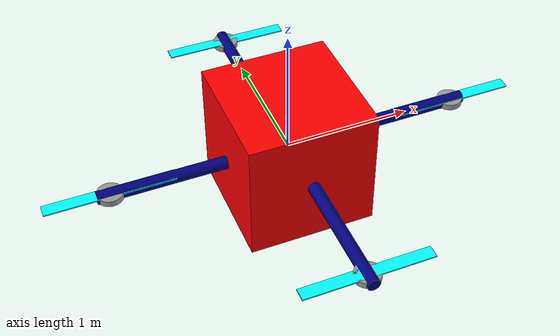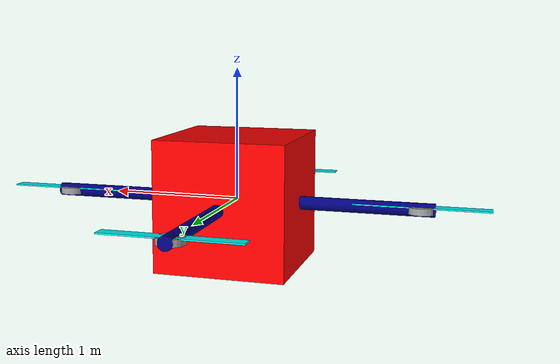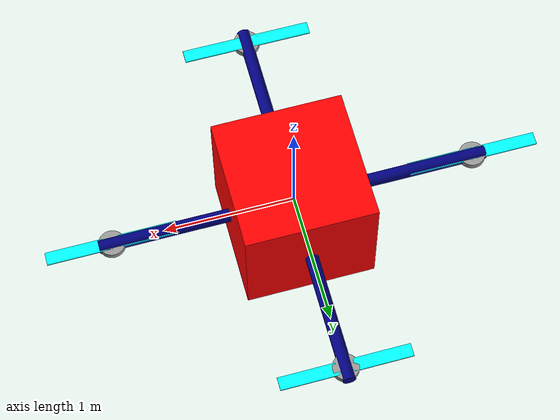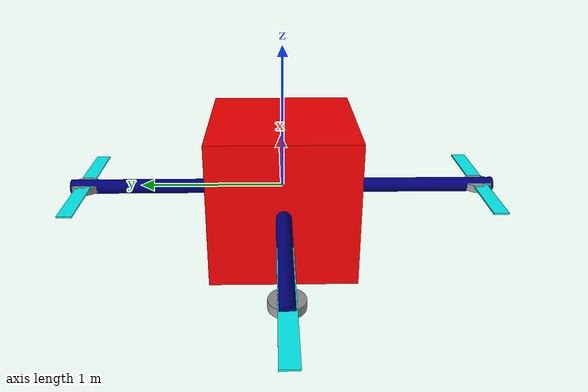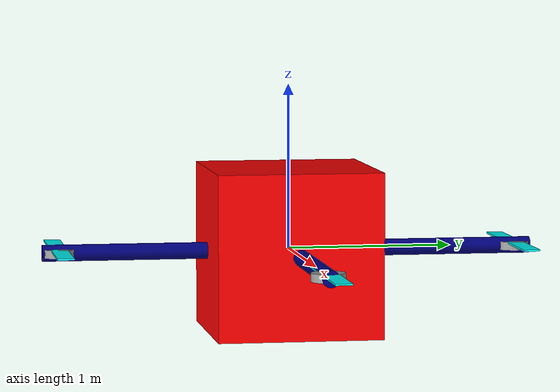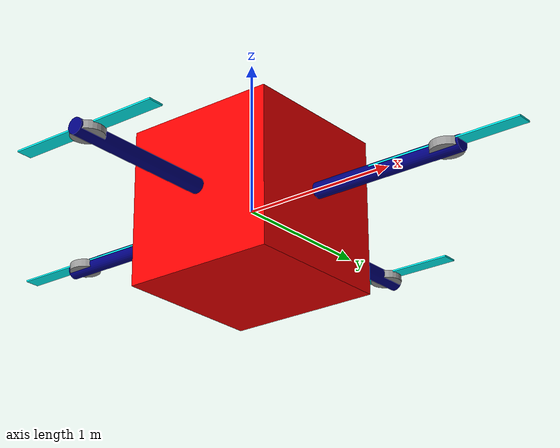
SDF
<?xml version='1.0'?>
<sdf version='1.6'>
  <model name='Quadrotor'>
    <link name='link_0'>
      <pose frame=''>0 0 -0.006154 0 -0 0</pose>
      <inertial>
        <mass>1</mass>
        <inertia>
          <ixx>0.166667</ixx>
          <ixy>0</ixy>
          <ixz>0</ixz>
          <iyy>0.166667</iyy>
          <iyz>0</iyz>
          <izz>0.166667</izz>
        </inertia>
        <pose frame=''>0 0 0 0 -0 0</pose>
      </inertial>
      <gravity>1</gravity>
      <self_collide>0</self_collide>
      <kinematic>0</kinematic>
      <visual name='visual'>
        <pose frame=''>0 0 0 0 -0 0</pose>
        <geometry>
          <box>
            <size>1 1 1</size>
          </box>
        </geometry>
        <material>
          <lighting>1</lighting>
          <script>
            <uri>file://media/materials/scripts/gazebo.material</uri>
            <name>Gazebo/Grey</name>
          </script>
          <ambient>0.3 0.3 0.3 1</ambient>
          <diffuse>1 0 0 1</diffuse>
          <specular>0.01 0.01 0.01 1</specular>
          <emissive>0 0 0 1</emissive>
          <shader type='vertex'>
            <normal_map>__default__</normal_map>
          </shader>
        </material>
        <cast_shadows>1</cast_shadows>
        <transparency>0</transparency>
      </visual>
      <collision name='collision'>
        <laser_retro>0</laser_retro>
        <max_contacts>10</max_contacts>
        <pose frame=''>0 0 0 0 -0 0</pose>
        <geometry>
          <box>
            <size>1 1 1</size>
          </box>
        </geometry>
        <surface>
          <friction>
            <ode>
              <mu>1</mu>
              <mu2>1</mu2>
              <fdir1>0 0 0</fdir1>
              <slip1>0</slip1>
              <slip2>0</slip2>
            </ode>
            <torsional>
              <coefficient>1</coefficient>
              <patch_radius>0</patch_radius>
              <surface_radius>0</surface_radius>
              <use_patch_radius>1</use_patch_radius>
              <ode>
                <slip>0</slip>
              </ode>
            </torsional>
          </friction>
          <bounce>
            <restitution_coefficient>0</restitution_coefficient>
            <threshold>1e+06</threshold>
          </bounce>
          <contact>
            <collide_without_contact>0</collide_without_contact>
            <collide_without_contact_bitmask>1</collide_without_contact_bitmask>
            <collide_bitmask>1</collide_bitmask>
            <ode>
              <soft_cfm>0</soft_cfm>
              <soft_erp>0.2</soft_erp>
              <kp>1e+13</kp>
              <kd>1</kd>
              <max_vel>0.01</max_vel>
              <min_depth>0</min_depth>
            </ode>
            <bullet>
              <split_impulse>1</split_impulse>
              <split_impulse_penetration_threshold>-0.01</split_impulse_penetration_threshold>
              <soft_cfm>0</soft_cfm>
              <soft_erp>0.2</soft_erp>
              <kp>1e+13</kp>
              <kd>1</kd>
            </bullet>
          </contact>
        </surface>
      </collision>
    </link>
    <link name='link_1'>
      <pose frame=''>1.00001 0 -0.006154 0 1.5707 0</pose>
      <inertial>
        <mass>1</mass>
        <inertia>
          <ixx>0.145833</ixx>
          <ixy>0</ixy>
          <ixz>0</ixz>
          <iyy>0.145833</iyy>
          <iyz>0</iyz>
          <izz>0.125</izz>
        </inertia>
        <pose frame=''>0 0 0 0 -0 0</pose>
      </inertial>
      <gravity>1</gravity>
      <self_collide>0</self_collide>
      <kinematic>0</kinematic>
      <visual name='visual'>
        <pose frame=''>0 0 0 0 -0 0</pose>
        <geometry>
          <cylinder>
            <radius>0.05</radius>
            <length>1</length>
          </cylinder>
        </geometry>
        <material>
          <lighting>1</lighting>
          <script>
            <uri>file://media/materials/scripts/gazebo.material</uri>
            <name>Gazebo/Grey</name>
          </script>
          <ambient>0 0 0.5 1</ambient>
          <diffuse>0.7 0.7 0.7 1</diffuse>
          <specular>0.01 0.01 0.01 1</specular>
          <emissive>0 0 0 1</emissive>
          <shader type='vertex'>
            <normal_map>__default__</normal_map>
          </shader>
        </material>
        <cast_shadows>1</cast_shadows>
        <transparency>0</transparency>
      </visual>
      <collision name='collision'>
        <laser_retro>0</laser_retro>
        <max_contacts>10</max_contacts>
        <pose frame=''>0 0 0 0 -0 0</pose>
        <geometry>
          <cylinder>
            <radius>0.05</radius>
            <length>1</length>
          </cylinder>
        </geometry>
        <surface>
          <friction>
            <ode>
              <mu>1</mu>
              <mu2>1</mu2>
              <fdir1>0 0 0</fdir1>
              <slip1>0</slip1>
              <slip2>0</slip2>
            </ode>
            <torsional>
              <coefficient>1</coefficient>
              <patch_radius>0</patch_radius>
              <surface_radius>0</surface_radius>
              <use_patch_radius>1</use_patch_radius>
              <ode>
                <slip>0</slip>
              </ode>
            </torsional>
          </friction>
          <bounce>
            <restitution_coefficient>0</restitution_coefficient>
            <threshold>1e+06</threshold>
          </bounce>
          <contact>
            <collide_without_contact>0</collide_without_contact>
            <collide_without_contact_bitmask>1</collide_without_contact_bitmask>
            <collide_bitmask>1</collide_bitmask>
            <ode>
              <soft_cfm>0</soft_cfm>
              <soft_erp>0.2</soft_erp>
              <kp>1e+13</kp>
              <kd>1</kd>
              <max_vel>0.01</max_vel>
              <min_depth>0</min_depth>
            </ode>
            <bullet>
              <split_impulse>1</split_impulse>
              <split_impulse_penetration_threshold>-0.01</split_impulse_penetration_threshold>
              <soft_cfm>0</soft_cfm>
              <soft_erp>0.2</soft_erp>
              <kp>1e+13</kp>
              <kd>1</kd>
            </bullet>
          </contact>
        </surface>
      </collision>
    </link>
    <link name='link_1_clone'>
      <pose frame=''>-1.00001 0 -0.006154 0 1.5707 0</pose>
      <inertial>
        <mass>1</mass>
        <inertia>
          <ixx>0.145833</ixx>
          <ixy>0</ixy>
          <ixz>0</ixz>
          <iyy>0.145833</iyy>
          <iyz>0</iyz>
          <izz>0.125</izz>
        </inertia>
        <pose frame=''>0 0 0 0 -0 0</pose>
      </inertial>
      <self_collide>0</self_collide>
      <kinematic>0</kinematic>
      <visual name='visual'>
        <pose frame=''>0 0 0 0 -0 0</pose>
        <geometry>
          <cylinder>
            <radius>0.05</radius>
            <length>1</length>
          </cylinder>
        </geometry>
        <material>
          <lighting>1</lighting>
          <script>
            <uri>file://media/materials/scripts/gazebo.material</uri>
            <name>Gazebo/Grey</name>
          </script>
          <ambient>0 0 0.5 1</ambient>
          <diffuse>0.7 0.7 0.7 1</diffuse>
          <specular>0.01 0.01 0.01 1</specular>
          <emissive>0 0 0 1</emissive>
          <shader type='vertex'>
            <normal_map>__default__</normal_map>
          </shader>
        </material>
        <cast_shadows>1</cast_shadows>
        <transparency>0</transparency>
      </visual>
      <collision name='collision'>
        <laser_retro>0</laser_retro>
        <max_contacts>10</max_contacts>
        <pose frame=''>0 0 0 0 -0 0</pose>
        <geometry>
          <cylinder>
            <radius>0.05</radius>
            <length>1</length>
          </cylinder>
        </geometry>
        <surface>
          <friction>
            <ode>
              <mu>1</mu>
              <mu2>1</mu2>
              <fdir1>0 0 0</fdir1>
              <slip1>0</slip1>
              <slip2>0</slip2>
            </ode>
            <torsional>
              <coefficient>1</coefficient>
              <patch_radius>0</patch_radius>
              <surface_radius>0</surface_radius>
              <use_patch_radius>1</use_patch_radius>
              <ode>
                <slip>0</slip>
              </ode>
            </torsional>
          </friction>
          <bounce>
            <restitution_coefficient>0</restitution_coefficient>
            <threshold>1e+06</threshold>
          </bounce>
          <contact>
            <collide_without_contact>0</collide_without_contact>
            <collide_without_contact_bitmask>1</collide_without_contact_bitmask>
            <collide_bitmask>1</collide_bitmask>
            <ode>
              <soft_cfm>0</soft_cfm>
              <soft_erp>0.2</soft_erp>
              <kp>1e+13</kp>
              <kd>1</kd>
              <max_vel>0.01</max_vel>
              <min_depth>0</min_depth>
            </ode>
            <bullet>
              <split_impulse>1</split_impulse>
              <split_impulse_penetration_threshold>-0.01</split_impulse_penetration_threshold>
              <soft_cfm>0</soft_cfm>
              <soft_erp>0.2</soft_erp>
              <kp>1e+13</kp>
              <kd>1</kd>
            </bullet>
          </contact>
        </surface>
      </collision>
    </link>
    <link name='link_1_clone_0'>
      <pose frame=''>0 -1.00001 -0.006154 1.5707 -0 0</pose>
      <inertial>
        <mass>1</mass>
        <inertia>
          <ixx>0.145833</ixx>
          <ixy>0</ixy>
          <ixz>0</ixz>
          <iyy>0.145833</iyy>
          <iyz>0</iyz>
          <izz>0.125</izz>
        </inertia>
        <pose frame=''>0 0 0 0 -0 0</pose>
      </inertial>
      <self_collide>0</self_collide>
      <kinematic>0</kinematic>
      <gravity>1</gravity>
      <visual name='visual'>
        <pose frame=''>0 0 0 0 -0 0</pose>
        <geometry>
          <cylinder>
            <radius>0.05</radius>
            <length>1</length>
          </cylinder>
        </geometry>
        <material>
          <lighting>1</lighting>
          <script>
            <uri>file://media/materials/scripts/gazebo.material</uri>
            <name>Gazebo/Grey</name>
          </script>
          <ambient>0 0 0.5 1</ambient>
          <diffuse>0.7 0.7 0.7 1</diffuse>
          <specular>0.01 0.01 0.01 1</specular>
          <emissive>0 0 0 1</emissive>
          <shader type='vertex'>
            <normal_map>__default__</normal_map>
          </shader>
        </material>
        <cast_shadows>1</cast_shadows>
        <transparency>0</transparency>
      </visual>
      <collision name='collision'>
        <laser_retro>0</laser_retro>
        <max_contacts>10</max_contacts>
        <pose frame=''>0 0 0 0 -0 0</pose>
        <geometry>
          <cylinder>
            <radius>0.05</radius>
            <length>1</length>
          </cylinder>
        </geometry>
        <surface>
          <friction>
            <ode>
              <mu>1</mu>
              <mu2>1</mu2>
              <fdir1>0 0 0</fdir1>
              <slip1>0</slip1>
              <slip2>0</slip2>
            </ode>
            <torsional>
              <coefficient>1</coefficient>
              <patch_radius>0</patch_radius>
              <surface_radius>0</surface_radius>
              <use_patch_radius>1</use_patch_radius>
              <ode>
                <slip>0</slip>
              </ode>
            </torsional>
          </friction>
          <bounce>
            <restitution_coefficient>0</restitution_coefficient>
            <threshold>1e+06</threshold>
          </bounce>
          <contact>
            <collide_without_contact>0</collide_without_contact>
            <collide_without_contact_bitmask>1</collide_without_contact_bitmask>
            <collide_bitmask>1</collide_bitmask>
            <ode>
              <soft_cfm>0</soft_cfm>
              <soft_erp>0.2</soft_erp>
              <kp>1e+13</kp>
              <kd>1</kd>
              <max_vel>0.01</max_vel>
              <min_depth>0</min_depth>
            </ode>
            <bullet>
              <split_impulse>1</split_impulse>
              <split_impulse_penetration_threshold>-0.01</split_impulse_penetration_threshold>
              <soft_cfm>0</soft_cfm>
              <soft_erp>0.2</soft_erp>
              <kp>1e+13</kp>
              <kd>1</kd>
            </bullet>
          </contact>
        </surface>
      </collision>
    </link>
    <link name='link_1_clone_0_clone'>
      <pose frame=''>0 1.00001 -0.006154 1.5707 -0 0</pose>
      <inertial>
        <mass>1</mass>
        <inertia>
          <ixx>0.145833</ixx>
          <ixy>0</ixy>
          <ixz>0</ixz>
          <iyy>0.145833</iyy>
          <iyz>0</iyz>
          <izz>0.125</izz>
        </inertia>
        <pose frame=''>0 0 0 0 -0 0</pose>
      </inertial>
      <self_collide>0</self_collide>
      <kinematic>0</kinematic>
      <visual name='visual'>
        <pose frame=''>0 0 0 0 -0 0</pose>
        <geometry>
          <cylinder>
            <radius>0.05</radius>
            <length>1</length>
          </cylinder>
        </geometry>
        <material>
          <lighting>1</lighting>
          <script>
            <uri>file://media/materials/scripts/gazebo.material</uri>
            <name>Gazebo/Grey</name>
          </script>
          <ambient>0 0 0.5 1</ambient>
          <diffuse>0.7 0.7 0.7 1</diffuse>
          <specular>0.01 0.01 0.01 1</specular>
          <emissive>0 0 0 1</emissive>
          <shader type='vertex'>
            <normal_map>__default__</normal_map>
          </shader>
        </material>
        <cast_shadows>1</cast_shadows>
        <transparency>0</transparency>
      </visual>
      <collision name='collision'>
        <laser_retro>0</laser_retro>
        <max_contacts>10</max_contacts>
        <pose frame=''>0 0 0 0 -0 0</pose>
        <geometry>
          <cylinder>
            <radius>0.05</radius>
            <length>1</length>
          </cylinder>
        </geometry>
        <surface>
          <friction>
            <ode>
              <mu>1</mu>
              <mu2>1</mu2>
              <fdir1>0 0 0</fdir1>
              <slip1>0</slip1>
              <slip2>0</slip2>
            </ode>
            <torsional>
              <coefficient>1</coefficient>
              <patch_radius>0</patch_radius>
              <surface_radius>0</surface_radius>
              <use_patch_radius>1</use_patch_radius>
              <ode>
                <slip>0</slip>
              </ode>
            </torsional>
          </friction>
          <bounce>
            <restitution_coefficient>0</restitution_coefficient>
            <threshold>1e+06</threshold>
          </bounce>
          <contact>
            <collide_without_contact>0</collide_without_contact>
            <collide_without_contact_bitmask>1</collide_without_contact_bitmask>
            <collide_bitmask>1</collide_bitmask>
            <ode>
              <soft_cfm>0</soft_cfm>
              <soft_erp>0.2</soft_erp>
              <kp>1e+13</kp>
              <kd>1</kd>
              <max_vel>0.01</max_vel>
              <min_depth>0</min_depth>
            </ode>
            <bullet>
              <split_impulse>1</split_impulse>
              <split_impulse_penetration_threshold>-0.01</split_impulse_penetration_threshold>
              <soft_cfm>0</soft_cfm>
              <soft_erp>0.2</soft_erp>
              <kp>1e+13</kp>
              <kd>1</kd>
            </bullet>
          </contact>
        </surface>
      </collision>
    </link>
    <link name='link_3'>
      <pose frame=''>1.40001 0 -0.006154 0 -0 0</pose>
      <inertial>
        <mass>1</mass>
        <inertia>
          <ixx>0.145833</ixx>
          <ixy>0</ixy>
          <ixz>0</ixz>
          <iyy>0.145833</iyy>
          <iyz>0</iyz>
          <izz>0.125</izz>
        </inertia>
        <pose frame=''>0 0 0 0 -0 0</pose>
      </inertial>
      <gravity>1</gravity>
      <self_collide>0</self_collide>
      <kinematic>0</kinematic>
      <visual name='visual'>
        <pose frame=''>0 0 0 0 -0 0</pose>
        <geometry>
          <cylinder>
            <radius>0.1</radius>
            <length>0.05</length>
          </cylinder>
        </geometry>
        <material>
          <lighting>1</lighting>
          <script>
            <uri>file://media/materials/scripts/gazebo.material</uri>
            <name>Gazebo/Grey</name>
          </script>
          <ambient>0.3 0.3 0.3 1</ambient>
          <diffuse>0.7 0.7 0.7 1</diffuse>
          <specular>0.01 0.01 0.01 1</specular>
          <emissive>0 0 0 1</emissive>
          <shader type='vertex'>
            <normal_map>__default__</normal_map>
          </shader>
        </material>
        <cast_shadows>1</cast_shadows>
        <transparency>0</transparency>
      </visual>
      <collision name='collision'>
        <laser_retro>0</laser_retro>
        <max_contacts>10</max_contacts>
        <pose frame=''>0 0 0 0 -0 0</pose>
        <geometry>
          <cylinder>
            <radius>0.1</radius>
            <length>0.05</length>
          </cylinder>
        </geometry>
        <surface>
          <friction>
            <ode>
              <mu>1</mu>
              <mu2>1</mu2>
              <fdir1>0 0 0</fdir1>
              <slip1>0</slip1>
              <slip2>0</slip2>
            </ode>
            <torsional>
              <coefficient>1</coefficient>
              <patch_radius>0</patch_radius>
              <surface_radius>0</surface_radius>
              <use_patch_radius>1</use_patch_radius>
              <ode>
                <slip>0</slip>
              </ode>
            </torsional>
          </friction>
          <bounce>
            <restitution_coefficient>0</restitution_coefficient>
            <threshold>1e+06</threshold>
          </bounce>
          <contact>
            <collide_without_contact>0</collide_without_contact>
            <collide_without_contact_bitmask>1</collide_without_contact_bitmask>
            <collide_bitmask>1</collide_bitmask>
            <ode>
              <soft_cfm>0</soft_cfm>
              <soft_erp>0.2</soft_erp>
              <kp>1e+13</kp>
              <kd>1</kd>
              <max_vel>0.01</max_vel>
              <min_depth>0</min_depth>
            </ode>
            <bullet>
              <split_impulse>1</split_impulse>
              <split_impulse_penetration_threshold>-0.01</split_impulse_penetration_threshold>
              <soft_cfm>0</soft_cfm>
              <soft_erp>0.2</soft_erp>
              <kp>1e+13</kp>
              <kd>1</kd>
            </bullet>
          </contact>
        </surface>
      </collision>
    </link>
    <link name='link_3_clone'>
      <pose frame=''>0 1.40001 -0.006154 0 -0 0</pose>
      <inertial>
        <mass>1</mass>
        <inertia>
          <ixx>0.145833</ixx>
          <ixy>0</ixy>
          <ixz>0</ixz>
          <iyy>0.145833</iyy>
          <iyz>0</iyz>
          <izz>0.125</izz>
        </inertia>
        <pose frame=''>0 0 0 0 -0 0</pose>
      </inertial>
      <self_collide>0</self_collide>
      <kinematic>0</kinematic>
      <visual name='visual'>
        <pose frame=''>0 0 0 0 -0 0</pose>
        <geometry>
          <cylinder>
            <radius>0.1</radius>
            <length>0.05</length>
          </cylinder>
        </geometry>
        <material>
          <lighting>1</lighting>
          <script>
            <uri>file://media/materials/scripts/gazebo.material</uri>
            <name>Gazebo/Grey</name>
          </script>
          <ambient>0.3 0.3 0.3 1</ambient>
          <diffuse>0.7 0.7 0.7 1</diffuse>
          <specular>0.01 0.01 0.01 1</specular>
          <emissive>0 0 0 1</emissive>
          <shader type='vertex'>
            <normal_map>__default__</normal_map>
          </shader>
        </material>
        <cast_shadows>1</cast_shadows>
        <transparency>0</transparency>
      </visual>
      <collision name='collision'>
        <laser_retro>0</laser_retro>
        <max_contacts>10</max_contacts>
        <pose frame=''>0 0 0 0 -0 0</pose>
        <geometry>
          <cylinder>
            <radius>0.1</radius>
            <length>0.05</length>
          </cylinder>
        </geometry>
        <surface>
          <friction>
            <ode>
              <mu>1</mu>
              <mu2>1</mu2>
              <fdir1>0 0 0</fdir1>
              <slip1>0</slip1>
              <slip2>0</slip2>
            </ode>
            <torsional>
              <coefficient>1</coefficient>
              <patch_radius>0</patch_radius>
              <surface_radius>0</surface_radius>
              <use_patch_radius>1</use_patch_radius>
              <ode>
                <slip>0</slip>
              </ode>
            </torsional>
          </friction>
          <bounce>
            <restitution_coefficient>0</restitution_coefficient>
            <threshold>1e+06</threshold>
          </bounce>
          <contact>
            <collide_without_contact>0</collide_without_contact>
            <collide_without_contact_bitmask>1</collide_without_contact_bitmask>
            <collide_bitmask>1</collide_bitmask>
            <ode>
              <soft_cfm>0</soft_cfm>
              <soft_erp>0.2</soft_erp>
              <kp>1e+13</kp>
              <kd>1</kd>
              <max_vel>0.01</max_vel>
              <min_depth>0</min_depth>
            </ode>
            <bullet>
              <split_impulse>1</split_impulse>
              <split_impulse_penetration_threshold>-0.01</split_impulse_penetration_threshold>
              <soft_cfm>0</soft_cfm>
              <soft_erp>0.2</soft_erp>
              <kp>1e+13</kp>
              <kd>1</kd>
            </bullet>
          </contact>
        </surface>
      </collision>
    </link>
    <link name='link_3_clone_0'>
      <pose frame=''>-1.40001 0 -0.006154 0 -0 0</pose>
      <inertial>
        <mass>1</mass>
        <inertia>
          <ixx>0.145833</ixx>
          <ixy>0</ixy>
          <ixz>0</ixz>
          <iyy>0.145833</iyy>
          <iyz>0</iyz>
          <izz>0.125</izz>
        </inertia>
        <pose frame=''>0 0 0 0 -0 0</pose>
      </inertial>
      <self_collide>0</self_collide>
      <kinematic>0</kinematic>
      <visual name='visual'>
        <pose frame=''>0 0 0 0 -0 0</pose>
        <geometry>
          <cylinder>
            <radius>0.1</radius>
            <length>0.05</length>
          </cylinder>
        </geometry>
        <material>
          <lighting>1</lighting>
          <script>
            <uri>file://media/materials/scripts/gazebo.material</uri>
            <name>Gazebo/Grey</name>
          </script>
          <ambient>0.3 0.3 0.3 1</ambient>
          <diffuse>0.7 0.7 0.7 1</diffuse>
          <specular>0.01 0.01 0.01 1</specular>
          <emissive>0 0 0 1</emissive>
          <shader type='vertex'>
            <normal_map>__default__</normal_map>
          </shader>
        </material>
        <cast_shadows>1</cast_shadows>
        <transparency>0</transparency>
      </visual>
      <collision name='collision'>
        <laser_retro>0</laser_retro>
        <max_contacts>10</max_contacts>
        <pose frame=''>0 0 0 0 -0 0</pose>
        <geometry>
          <cylinder>
            <radius>0.1</radius>
            <length>0.05</length>
          </cylinder>
        </geometry>
        <surface>
          <friction>
            <ode>
              <mu>1</mu>
              <mu2>1</mu2>
              <fdir1>0 0 0</fdir1>
              <slip1>0</slip1>
              <slip2>0</slip2>
            </ode>
            <torsional>
              <coefficient>1</coefficient>
              <patch_radius>0</patch_radius>
              <surface_radius>0</surface_radius>
              <use_patch_radius>1</use_patch_radius>
              <ode>
                <slip>0</slip>
              </ode>
            </torsional>
          </friction>
          <bounce>
            <restitution_coefficient>0</restitution_coefficient>
            <threshold>1e+06</threshold>
          </bounce>
          <contact>
            <collide_without_contact>0</collide_without_contact>
            <collide_without_contact_bitmask>1</collide_without_contact_bitmask>
            <collide_bitmask>1</collide_bitmask>
            <ode>
              <soft_cfm>0</soft_cfm>
              <soft_erp>0.2</soft_erp>
              <kp>1e+13</kp>
              <kd>1</kd>
              <max_vel>0.01</max_vel>
              <min_depth>0</min_depth>
            </ode>
            <bullet>
              <split_impulse>1</split_impulse>
              <split_impulse_penetration_threshold>-0.01</split_impulse_penetration_threshold>
              <soft_cfm>0</soft_cfm>
              <soft_erp>0.2</soft_erp>
              <kp>1e+13</kp>
              <kd>1</kd>
            </bullet>
          </contact>
        </surface>
      </collision>
    </link>
    <link name='link_3_clone_1'>
      <pose frame=''>0 -1.40001 -0.006154 0 -0 0</pose>
      <inertial>
        <mass>1</mass>
        <inertia>
          <ixx>0.145833</ixx>
          <ixy>0</ixy>
          <ixz>0</ixz>
          <iyy>0.145833</iyy>
          <iyz>0</iyz>
          <izz>0.125</izz>
        </inertia>
        <pose frame=''>0 0 0 0 -0 0</pose>
      </inertial>
      <self_collide>0</self_collide>
      <kinematic>0</kinematic>
      <visual name='visual'>
        <pose frame=''>0 0 0 0 -0 0</pose>
        <geometry>
          <cylinder>
            <radius>0.1</radius>
            <length>0.05</length>
          </cylinder>
        </geometry>
        <material>
          <lighting>1</lighting>
          <script>
            <uri>file://media/materials/scripts/gazebo.material</uri>
            <name>Gazebo/Grey</name>
          </script>
          <ambient>0.3 0.3 0.3 1</ambient>
          <diffuse>0.7 0.7 0.7 1</diffuse>
          <specular>0.01 0.01 0.01 1</specular>
          <emissive>0 0 0 1</emissive>
          <shader type='vertex'>
            <normal_map>__default__</normal_map>
          </shader>
        </material>
        <cast_shadows>1</cast_shadows>
        <transparency>0</transparency>
      </visual>
      <collision name='collision'>
        <laser_retro>0</laser_retro>
        <max_contacts>10</max_contacts>
        <pose frame=''>0 0 0 0 -0 0</pose>
        <geometry>
          <cylinder>
            <radius>0.1</radius>
            <length>0.05</length>
          </cylinder>
        </geometry>
        <surface>
          <friction>
            <ode>
              <mu>1</mu>
              <mu2>1</mu2>
              <fdir1>0 0 0</fdir1>
              <slip1>0</slip1>
              <slip2>0</slip2>
            </ode>
            <torsional>
              <coefficient>1</coefficient>
              <patch_radius>0</patch_radius>
              <surface_radius>0</surface_radius>
              <use_patch_radius>1</use_patch_radius>
              <ode>
                <slip>0</slip>
              </ode>
            </torsional>
          </friction>
          <bounce>
            <restitution_coefficient>0</restitution_coefficient>
            <threshold>1e+06</threshold>
          </bounce>
          <contact>
            <collide_without_contact>0</collide_without_contact>
            <collide_without_contact_bitmask>1</collide_without_contact_bitmask>
            <collide_bitmask>1</collide_bitmask>
            <ode>
              <soft_cfm>0</soft_cfm>
              <soft_erp>0.2</soft_erp>
              <kp>1e+13</kp>
              <kd>1</kd>
              <max_vel>0.01</max_vel>
              <min_depth>0</min_depth>
            </ode>
            <bullet>
              <split_impulse>1</split_impulse>
              <split_impulse_penetration_threshold>-0.01</split_impulse_penetration_threshold>
              <soft_cfm>0</soft_cfm>
              <soft_erp>0.2</soft_erp>
              <kp>1e+13</kp>
              <kd>1</kd>
            </bullet>
          </contact>
        </surface>
      </collision>
    </link>
    <link name='link_4'>
      <pose frame=''>0 -1.40001 0.013846 0 -0 0</pose>
      <inertial>
        <mass>1</mass>
        <inertia>
          <ixx>0.166667</ixx>
          <ixy>0</ixy>
          <ixz>0</ixz>
          <iyy>0.166667</iyy>
          <iyz>0</iyz>
          <izz>0.166667</izz>
        </inertia>
        <pose frame=''>0 0 0 0 -0 0</pose>
      </inertial>
      <gravity>1</gravity>
      <self_collide>0</self_collide>
      <kinematic>0</kinematic>
      <visual name='visual'>
        <pose frame=''>0 0 0 0 -0 0</pose>
        <geometry>
          <box>
            <size>1 0.1 0.01</size>
          </box>
        </geometry>
        <material>
          <lighting>1</lighting>
          <script>
            <uri>file://media/materials/scripts/gazebo.material</uri>
            <name>Gazebo/Grey</name>
          </script>
          <ambient>0 1 1 0</ambient>
          <diffuse>0.7 0.7 0.7 1</diffuse>
          <specular>0.01 0.01 0.01 1</specular>
          <emissive>0 0 0 1</emissive>
          <shader type='vertex'>
            <normal_map>__default__</normal_map>
          </shader>
        </material>
        <cast_shadows>1</cast_shadows>
        <transparency>0</transparency>
      </visual>
      <collision name='collision'>
        <laser_retro>0</laser_retro>
        <max_contacts>10</max_contacts>
        <pose frame=''>0 0 0 0 -0 0</pose>
        <geometry>
          <box>
            <size>1 0.1 0.01</size>
          </box>
        </geometry>
        <surface>
          <friction>
            <ode>
              <mu>1</mu>
              <mu2>1</mu2>
              <fdir1>0 0 0</fdir1>
              <slip1>0</slip1>
              <slip2>0</slip2>
            </ode>
            <torsional>
              <coefficient>1</coefficient>
              <patch_radius>0</patch_radius>
              <surface_radius>0</surface_radius>
              <use_patch_radius>1</use_patch_radius>
              <ode>
                <slip>0</slip>
              </ode>
            </torsional>
          </friction>
          <bounce>
            <restitution_coefficient>0</restitution_coefficient>
            <threshold>1e+06</threshold>
          </bounce>
          <contact>
            <collide_without_contact>0</collide_without_contact>
            <collide_without_contact_bitmask>1</collide_without_contact_bitmask>
            <collide_bitmask>1</collide_bitmask>
            <ode>
              <soft_cfm>0</soft_cfm>
              <soft_erp>0.2</soft_erp>
              <kp>1e+13</kp>
              <kd>1</kd>
              <max_vel>0.01</max_vel>
              <min_depth>0</min_depth>
            </ode>
            <bullet>
              <split_impulse>1</split_impulse>
              <split_impulse_penetration_threshold>-0.01</split_impulse_penetration_threshold>
              <soft_cfm>0</soft_cfm>
              <soft_erp>0.2</soft_erp>
              <kp>1e+13</kp>
              <kd>1</kd>
            </bullet>
          </contact>
        </surface>
      </collision>
    </link>
    <link name='link_4_clone'>
      <pose frame=''>0 1.40001 0.013846 0 -0 0</pose>
      <inertial>
        <mass>1</mass>
        <inertia>
          <ixx>0.166667</ixx>
          <ixy>0</ixy>
          <ixz>0</ixz>
          <iyy>0.166667</iyy>
          <iyz>0</iyz>
          <izz>0.166667</izz>
        </inertia>
        <pose frame=''>0 0 0 0 -0 0</pose>
      </inertial>
      <self_collide>0</self_collide>
      <kinematic>0</kinematic>
      <visual name='visual'>
        <pose frame=''>0 0 0 0 -0 0</pose>
        <geometry>
          <box>
            <size>1 0.1 0.01</size>
          </box>
        </geometry>
        <material>
          <lighting>1</lighting>
          <script>
            <uri>file://media/materials/scripts/gazebo.material</uri>
            <name>Gazebo/Grey</name>
          </script>
          <ambient>0 1 1 0</ambient>
          <diffuse>0.7 0.7 0.7 1</diffuse>
          <specular>0.01 0.01 0.01 1</specular>
          <emissive>0 0 0 1</emissive>
          <shader type='vertex'>
            <normal_map>__default__</normal_map>
          </shader>
        </material>
        <cast_shadows>1</cast_shadows>
        <transparency>0</transparency>
      </visual>
      <collision name='collision'>
        <laser_retro>0</laser_retro>
        <max_contacts>10</max_contacts>
        <pose frame=''>0 0 0 0 -0 0</pose>
        <geometry>
          <box>
            <size>1 0.1 0.01</size>
          </box>
        </geometry>
        <surface>
          <friction>
            <ode>
              <mu>1</mu>
              <mu2>1</mu2>
              <fdir1>0 0 0</fdir1>
              <slip1>0</slip1>
              <slip2>0</slip2>
            </ode>
            <torsional>
              <coefficient>1</coefficient>
              <patch_radius>0</patch_radius>
              <surface_radius>0</surface_radius>
              <use_patch_radius>1</use_patch_radius>
              <ode>
                <slip>0</slip>
              </ode>
            </torsional>
          </friction>
          <bounce>
            <restitution_coefficient>0</restitution_coefficient>
            <threshold>1e+06</threshold>
          </bounce>
          <contact>
            <collide_without_contact>0</collide_without_contact>
            <collide_without_contact_bitmask>1</collide_without_contact_bitmask>
            <collide_bitmask>1</collide_bitmask>
            <ode>
              <soft_cfm>0</soft_cfm>
              <soft_erp>0.2</soft_erp>
              <kp>1e+13</kp>
              <kd>1</kd>
              <max_vel>0.01</max_vel>
              <min_depth>0</min_depth>
            </ode>
            <bullet>
              <split_impulse>1</split_impulse>
              <split_impulse_penetration_threshold>-0.01</split_impulse_penetration_threshold>
              <soft_cfm>0</soft_cfm>
              <soft_erp>0.2</soft_erp>
              <kp>1e+13</kp>
              <kd>1</kd>
            </bullet>
          </contact>
        </surface>
      </collision>
    </link>
    <link name='link_4_clone_0'>
      <pose frame=''>1.40001 0 0.013846 0 -0 0</pose>
      <inertial>
        <mass>1</mass>
        <inertia>
          <ixx>0.166667</ixx>
          <ixy>0</ixy>
          <ixz>0</ixz>
          <iyy>0.166667</iyy>
          <iyz>0</iyz>
          <izz>0.166667</izz>
        </inertia>
        <pose frame=''>0 0 0 0 -0 0</pose>
      </inertial>
      <self_collide>0</self_collide>
      <kinematic>0</kinematic>
      <visual name='visual'>
        <pose frame=''>0 0 0 0 -0 0</pose>
        <geometry>
          <box>
            <size>1 0.1 0.01</size>
          </box>
        </geometry>
        <material>
          <lighting>1</lighting>
          <script>
            <uri>file://media/materials/scripts/gazebo.material</uri>
            <name>Gazebo/Grey</name>
          </script>
          <ambient>0 1 1 0</ambient>
          <diffuse>0.7 0.7 0.7 1</diffuse>
          <specular>0.01 0.01 0.01 1</specular>
          <emissive>0 0 0 1</emissive>
          <shader type='vertex'>
            <normal_map>__default__</normal_map>
          </shader>
        </material>
        <cast_shadows>1</cast_shadows>
        <transparency>0</transparency>
      </visual>
      <collision name='collision'>
        <laser_retro>0</laser_retro>
        <max_contacts>10</max_contacts>
        <pose frame=''>0 0 0 0 -0 0</pose>
        <geometry>
          <box>
            <size>1 0.1 0.01</size>
          </box>
        </geometry>
        <surface>
          <friction>
            <ode>
              <mu>1</mu>
              <mu2>1</mu2>
              <fdir1>0 0 0</fdir1>
              <slip1>0</slip1>
              <slip2>0</slip2>
            </ode>
            <torsional>
              <coefficient>1</coefficient>
              <patch_radius>0</patch_radius>
              <surface_radius>0</surface_radius>
              <use_patch_radius>1</use_patch_radius>
              <ode>
                <slip>0</slip>
              </ode>
            </torsional>
          </friction>
          <bounce>
            <restitution_coefficient>0</restitution_coefficient>
            <threshold>1e+06</threshold>
          </bounce>
          <contact>
            <collide_without_contact>0</collide_without_contact>
            <collide_without_contact_bitmask>1</collide_without_contact_bitmask>
            <collide_bitmask>1</collide_bitmask>
            <ode>
              <soft_cfm>0</soft_cfm>
              <soft_erp>0.2</soft_erp>
              <kp>1e+13</kp>
              <kd>1</kd>
              <max_vel>0.01</max_vel>
              <min_depth>0</min_depth>
            </ode>
            <bullet>
              <split_impulse>1</split_impulse>
              <split_impulse_penetration_threshold>-0.01</split_impulse_penetration_threshold>
              <soft_cfm>0</soft_cfm>
              <soft_erp>0.2</soft_erp>
              <kp>1e+13</kp>
              <kd>1</kd>
            </bullet>
          </contact>
        </surface>
      </collision>
    </link>
    <link name='link_4_clone_1'>
      <pose frame=''>-1.40001 0 0.013846 0 -0 0</pose>
      <inertial>
        <mass>1</mass>
        <inertia>
          <ixx>0.166667</ixx>
          <ixy>0</ixy>
          <ixz>0</ixz>
          <iyy>0.166667</iyy>
          <iyz>0</iyz>
          <izz>0.166667</izz>
        </inertia>
        <pose frame=''>0 0 0 0 -0 0</pose>
      </inertial>
      <self_collide>0</self_collide>
      <kinematic>0</kinematic>
      <visual name='visual'>
        <pose frame=''>0 0 0 0 -0 0</pose>
        <geometry>
          <box>
            <size>1 0.1 0.01</size>
          </box>
        </geometry>
        <material>
          <lighting>1</lighting>
          <script>
            <uri>file://media/materials/scripts/gazebo.material</uri>
            <name>Gazebo/Grey</name>
          </script>
          <ambient>0 1 1 0</ambient>
          <diffuse>0.7 0.7 0.7 1</diffuse>
          <specular>0.01 0.01 0.01 1</specular>
          <emissive>0 0 0 1</emissive>
          <shader type='vertex'>
            <normal_map>__default__</normal_map>
          </shader>
        </material>
        <cast_shadows>1</cast_shadows>
        <transparency>0</transparency>
      </visual>
      <collision name='collision'>
        <laser_retro>0</laser_retro>
        <max_contacts>10</max_contacts>
        <pose frame=''>0 0 0 0 -0 0</pose>
        <geometry>
          <box>
            <size>1 0.1 0.01</size>
          </box>
        </geometry>
        <surface>
          <friction>
            <ode>
              <mu>1</mu>
              <mu2>1</mu2>
              <fdir1>0 0 0</fdir1>
              <slip1>0</slip1>
              <slip2>0</slip2>
            </ode>
            <torsional>
              <coefficient>1</coefficient>
              <patch_radius>0</patch_radius>
              <surface_radius>0</surface_radius>
              <use_patch_radius>1</use_patch_radius>
              <ode>
                <slip>0</slip>
              </ode>
            </torsional>
          </friction>
          <bounce>
            <restitution_coefficient>0</restitution_coefficient>
            <threshold>1e+06</threshold>
          </bounce>
          <contact>
            <collide_without_contact>0</collide_without_contact>
            <collide_without_contact_bitmask>1</collide_without_contact_bitmask>
            <collide_bitmask>1</collide_bitmask>
            <ode>
              <soft_cfm>0</soft_cfm>
              <soft_erp>0.2</soft_erp>
              <kp>1e+13</kp>
              <kd>1</kd>
              <max_vel>0.01</max_vel>
              <min_depth>0</min_depth>
            </ode>
            <bullet>
              <split_impulse>1</split_impulse>
              <split_impulse_penetration_threshold>-0.01</split_impulse_penetration_threshold>
              <soft_cfm>0</soft_cfm>
              <soft_erp>0.2</soft_erp>
              <kp>1e+13</kp>
              <kd>1</kd>
            </bullet>
          </contact>
        </surface>
      </collision>
    </link>
    <joint name='link_0_JOINT_11' type='fixed'>
      <parent>link_0</parent>
      <child>link_1_clone_0</child>
      <pose frame=''>0 0 0 -1.5707 0 0</pose>
      <physics>
        <ode>
          <limit>
            <cfm>0</cfm>
            <erp>0.2</erp>
          </limit>
          <suspension>
            <cfm>0</cfm>
            <erp>0.2</erp>
          </suspension>
        </ode>
      </physics>
    </joint>
    <joint name='link_0_JOINT_4' type='fixed'>
      <parent>link_0</parent>
      <child>link_1</child>
      <pose frame=''>0 0 0 0 -1.5707 0</pose>
      <physics>
        <ode>
          <limit>
            <cfm>0</cfm>
            <erp>0.2</erp>
          </limit>
          <suspension>
            <cfm>0</cfm>
            <erp>0.2</erp>
          </suspension>
        </ode>
      </physics>
    </joint>
    <joint name='link_0_JOINT_5' type='fixed'>
      <parent>link_0</parent>
      <child>link_1_clone</child>
      <pose frame=''>0 0 0 0 -1.5707 0</pose>
      <physics>
        <ode>
          <limit>
            <cfm>0</cfm>
            <erp>0.2</erp>
          </limit>
          <suspension>
            <cfm>0</cfm>
            <erp>0.2</erp>
          </suspension>
        </ode>
      </physics>
    </joint>
    <joint name='link_0_JOINT_6' type='fixed'>
      <parent>link_0</parent>
      <child>link_1_clone_0_clone</child>
      <pose frame=''>0 0 0 -1.5707 0 0</pose>
      <physics>
        <ode>
          <limit>
            <cfm>0</cfm>
            <erp>0.2</erp>
          </limit>
          <suspension>
            <cfm>0</cfm>
            <erp>0.2</erp>
          </suspension>
        </ode>
      </physics>
    </joint>
    <joint name='link_1_JOINT_10' type='fixed'>
      <parent>link_1</parent>
      <child>link_3</child>
      <pose frame=''>0 0 0 0 -0 0</pose>
      <physics>
        <ode>
          <limit>
            <cfm>0</cfm>
            <erp>0.2</erp>
          </limit>
          <suspension>
            <cfm>0</cfm>
            <erp>0.2</erp>
          </suspension>
        </ode>
      </physics>
    </joint>
    <joint name='link_1_clone_0_JOINT_7' type='fixed'>
      <parent>link_1_clone_0</parent>
      <child>link_3_clone_1</child>
      <pose frame=''>0 0 0 0 -0 0</pose>
      <physics>
        <ode>
          <limit>
            <cfm>0</cfm>
            <erp>0.2</erp>
          </limit>
          <suspension>
            <cfm>0</cfm>
            <erp>0.2</erp>
          </suspension>
        </ode>
      </physics>
    </joint>
    <joint name='link_1_clone_0_clone_JOINT_9' type='fixed'>
      <parent>link_1_clone_0_clone</parent>
      <child>link_3_clone</child>
      <pose frame=''>0 0 0 0 -0 0</pose>
      <physics>
        <ode>
          <limit>
            <cfm>0</cfm>
            <erp>0.2</erp>
          </limit>
          <suspension>
            <cfm>0</cfm>
            <erp>0.2</erp>
          </suspension>
        </ode>
      </physics>
    </joint>
    <joint name='link_1_clone_JOINT_8' type='fixed'>
      <parent>link_1_clone</parent>
      <child>link_3_clone_0</child>
      <pose frame=''>0 0 0 0 -0 0</pose>
      <physics>
        <ode>
          <limit>
            <cfm>0</cfm>
            <erp>0.2</erp>
          </limit>
          <suspension>
            <cfm>0</cfm>
            <erp>0.2</erp>
          </suspension>
        </ode>
      </physics>
    </joint>
    <joint name='link_3_JOINT_15' type='revolute'>
      <parent>link_3</parent>
      <child>link_4_clone_0</child>
      <pose frame=''>0 0 0 0 -0 0</pose>
      <axis>
        <xyz>-0 -0 -1</xyz>
        <use_parent_model_frame>0</use_parent_model_frame>
        <limit>
          <lower>-1.79769e+308</lower>
          <upper>1.79769e+308</upper>
          <effort>-1</effort>
          <velocity>-1</velocity>
        </limit>
        <dynamics>
          <spring_reference>0</spring_reference>
          <spring_stiffness>0</spring_stiffness>
          <damping>0</damping>
        </dynamics>
      </axis>
      <physics>
        <ode>
          <limit>
            <cfm>0</cfm>
            <erp>0.2</erp>
          </limit>
          <suspension>
            <cfm>0</cfm>
            <erp>0.2</erp>
          </suspension>
        </ode>
      </physics>
    </joint>
    <joint name='link_3_clone_0_JOINT_17' type='revolute'>
      <parent>link_3_clone_0</parent>
      <child>link_4_clone_1</child>
      <pose frame=''>0 0 0 0 -0 0</pose>
      <axis>
        <xyz>-0 -0 -1</xyz>
        <use_parent_model_frame>0</use_parent_model_frame>
        <limit>
          <lower>-1.79769e+308</lower>
          <upper>1.79769e+308</upper>
          <effort>-1</effort>
          <velocity>-1</velocity>
        </limit>
        <dynamics>
          <spring_reference>0</spring_reference>
          <spring_stiffness>0</spring_stiffness>
          <damping>0</damping>
        </dynamics>
      </axis>
      <physics>
        <ode>
          <limit>
            <cfm>0</cfm>
            <erp>0.2</erp>
          </limit>
          <suspension>
            <cfm>0</cfm>
            <erp>0.2</erp>
          </suspension>
        </ode>
      </physics>
    </joint>
    <joint name='link_3_clone_1_JOINT_12' type='revolute'>
      <parent>link_3_clone_1</parent>
      <child>link_4</child>
      <pose frame=''>0 0 0 0 -0 0</pose>
      <axis>
        <xyz>0 0 1</xyz>
        <use_parent_model_frame>0</use_parent_model_frame>
        <limit>
          <lower>-1.79769e+308</lower>
          <upper>1.79769e+308</upper>
          <effort>-1</effort>
          <velocity>-1</velocity>
        </limit>
        <dynamics>
          <spring_reference>0</spring_reference>
          <spring_stiffness>0</spring_stiffness>
          <damping>0</damping>
        </dynamics>
      </axis>
      <physics>
        <ode>
          <limit>
            <cfm>0</cfm>
            <erp>0.2</erp>
          </limit>
          <suspension>
            <cfm>0</cfm>
            <erp>0.2</erp>
          </suspension>
        </ode>
      </physics>
    </joint>
    <joint name='link_3_clone_JOINT_16' type='revolute'>
      <parent>link_3_clone</parent>
      <child>link_4_clone</child>
      <pose frame=''>0 0 0 0 -0 0</pose>
      <axis>
        <xyz>0 0 1</xyz>
        <use_parent_model_frame>0</use_parent_model_frame>
        <limit>
          <lower>-1.79769e+308</lower>
          <upper>1.79769e+308</upper>
          <effort>-1</effort>
          <velocity>-1</velocity>
        </limit>
        <dynamics>
          <spring_reference>0</spring_reference>
          <spring_stiffness>0</spring_stiffness>
          <damping>0</damping>
        </dynamics>
      </axis>
      <physics>
        <ode>
          <limit>
            <cfm>0</cfm>
            <erp>0.2</erp>
          </limit>
          <suspension>
            <cfm>0</cfm>
            <erp>0.2</erp>
          </suspension>
        </ode>
      </physics>
    </joint>
    <static>0</static>
    <allow_auto_disable>1</allow_auto_disable>
  </model>
</sdf>
